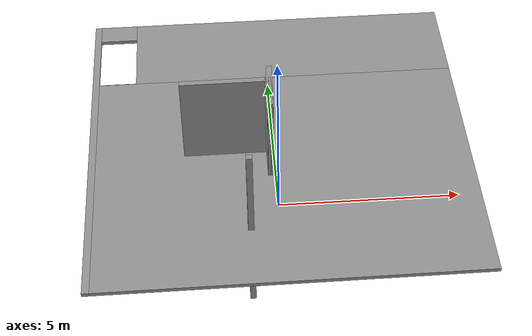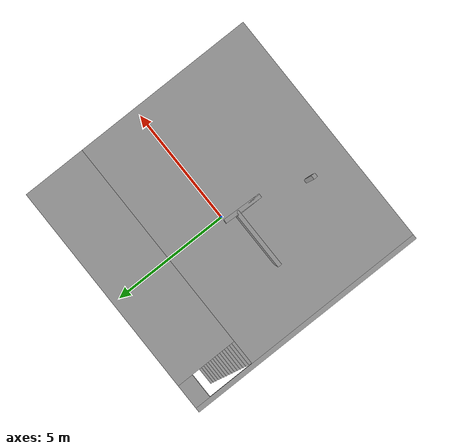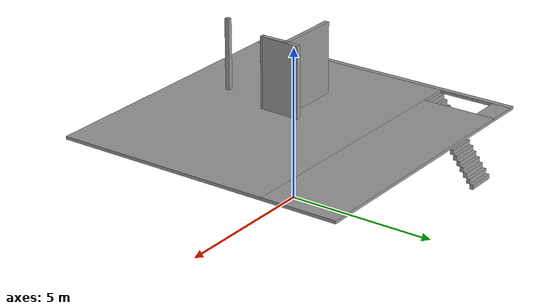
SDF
<sdf version="1.6">
 <model name="TwoStoreyBuilding">
  <link name="Floor_0">
   <pose>0 0 2.5 0 -0 0</pose>
   <visual name="Floor_0_Visual_0">
    <pose>-4.80983 0 0.05 0 -0 0</pose>
    <geometry><box><size>0.180349 9.8 0.1</size></box></geometry>
    <material>
     <script><uri>file://media/materials/scripts/gazebo.material</uri><name>Gazebo/Grey</name></script>
     <ambient>1 1 1 1</ambient>
    </material>
    <meta><layer>1</layer></meta>
   </visual>
   <visual name="Floor_0_Visual_1">
    <pose>0.090174 -1.26072 0.05 0 -0 0</pose>
    <geometry><box><size>9.61965 7.27856 0.1</size></box></geometry>
    <material>
     <script><uri>file://media/materials/scripts/gazebo.material</uri><name>Gazebo/Grey</name></script>
     <ambient>1 1 1 1</ambient>
    </material>
    <meta><layer>1</layer></meta>
   </visual>
   <visual name="Floor_0_Visual_2">
    <pose>0.590174 3.63928 0.05 0 -0 0</pose>
    <geometry><box><size>8.61965 2.52144 0.1</size></box></geometry>
    <material>
     <script><uri>file://media/materials/scripts/gazebo.material</uri><name>Gazebo/Grey</name></script>
     <ambient>1 1 1 1</ambient>
    </material>
    <meta><layer>1</layer></meta>
   </visual>
   <visual name="Floor_0_Visual_3">
    <pose>-4.21965 4.58311 0.05 0 -0 0</pose>
    <geometry><box><size>1 0.633786 0.1</size></box></geometry>
    <material>
     <script><uri>file://media/materials/scripts/gazebo.material</uri><name>Gazebo/Grey</name></script>
     <ambient>1 1 1 1</ambient>
    </material>
    <meta><layer>1</layer></meta>
   </visual>
   <collision name="Floor_0_Collision_0">
    <pose>-4.80983 0 0.05 0 -0 0</pose>
    <geometry><box><size>0.180349 9.8 0.1</size></box></geometry>
    <surface>
     <friction>
      <ode><mu>1</mu><mu2>1</mu2><fdir1>0 0 0</fdir1><slip1>0</slip1><slip2>0</slip2></ode>
      <torsional>
       <coefficient>1</coefficient>
       <patch_radius>0</patch_radius>
       <surface_radius>0</surface_radius>
       <use_patch_radius>1</use_patch_radius>
       <ode><slip>0</slip></ode>
      </torsional>
     </friction>
     <bounce><restitution_coefficient>0</restitution_coefficient><threshold>1e+06</threshold></bounce>
     <contact>
      <collide_without_contact>0</collide_without_contact>
      <collide_without_contact_bitmask>1</collide_without_contact_bitmask>
      <collide_bitmask>1</collide_bitmask>
      <ode>
       <soft_cfm>0</soft_cfm>
       <soft_erp>0.2</soft_erp>
       <kp>1e+13</kp>
       <kd>1</kd>
       <max_vel>0.01</max_vel>
       <min_depth>0</min_depth>
      </ode>
      <bullet>
       <split_impulse>1</split_impulse>
       <split_impulse_penetration_threshold>-0.01</split_impulse_penetration_threshold>
       <soft_cfm>0</soft_cfm>
       <soft_erp>0.2</soft_erp>
       <kp>1e+13</kp>
       <kd>1</kd>
      </bullet>
     </contact>
    </surface>
   </collision>
   <collision name="Floor_0_Collision_1">
    <pose>0.090174 -1.26072 0.05 0 -0 0</pose>
    <geometry><box><size>9.61965 7.27856 0.1</size></box></geometry>
    <surface>
     <friction>
      <ode><mu>1</mu><mu2>1</mu2><fdir1>0 0 0</fdir1><slip1>0</slip1><slip2>0</slip2></ode>
      <torsional>
       <coefficient>1</coefficient>
       <patch_radius>0</patch_radius>
       <surface_radius>0</surface_radius>
       <use_patch_radius>1</use_patch_radius>
       <ode><slip>0</slip></ode>
      </torsional>
     </friction>
     <bounce><restitution_coefficient>0</restitution_coefficient><threshold>1e+06</threshold></bounce>
     <contact>
      <collide_without_contact>0</collide_without_contact>
      <collide_without_contact_bitmask>1</collide_without_contact_bitmask>
      <collide_bitmask>1</collide_bitmask>
      <ode>
       <soft_cfm>0</soft_cfm>
       <soft_erp>0.2</soft_erp>
       <kp>1e+13</kp>
       <kd>1</kd>
       <max_vel>0.01</max_vel>
       <min_depth>0</min_depth>
      </ode>
      <bullet>
       <split_impulse>1</split_impulse>
       <split_impulse_penetration_threshold>-0.01</split_impulse_penetration_threshold>
       <soft_cfm>0</soft_cfm>
       <soft_erp>0.2</soft_erp>
       <kp>1e+13</kp>
       <kd>1</kd>
      </bullet>
     </contact>
    </surface>
   </collision>
   <collision name="Floor_0_Collision_2">
    <pose>0.590174 3.63928 0.05 0 -0 0</pose>
    <geometry><box><size>8.61965 2.52144 0.1</size></box></geometry>
    <surface>
     <friction>
      <ode><mu>1</mu><mu2>1</mu2><fdir1>0 0 0</fdir1><slip1>0</slip1><slip2>0</slip2></ode>
      <torsional>
       <coefficient>1</coefficient>
       <patch_radius>0</patch_radius>
       <surface_radius>0</surface_radius>
       <use_patch_radius>1</use_patch_radius>
       <ode><slip>0</slip></ode>
      </torsional>
     </friction>
     <bounce><restitution_coefficient>0</restitution_coefficient><threshold>1e+06</threshold></bounce>
     <contact>
      <collide_without_contact>0</collide_without_contact>
      <collide_without_contact_bitmask>1</collide_without_contact_bitmask>
      <collide_bitmask>1</collide_bitmask>
      <ode>
       <soft_cfm>0</soft_cfm>
       <soft_erp>0.2</soft_erp>
       <kp>1e+13</kp>
       <kd>1</kd>
       <max_vel>0.01</max_vel>
       <min_depth>0</min_depth>
      </ode>
      <bullet>
       <split_impulse>1</split_impulse>
       <split_impulse_penetration_threshold>-0.01</split_impulse_penetration_threshold>
       <soft_cfm>0</soft_cfm>
       <soft_erp>0.2</soft_erp>
       <kp>1e+13</kp>
       <kd>1</kd>
      </bullet>
     </contact>
    </surface>
   </collision>
   <collision name="Floor_0_Collision_3">
    <pose>-4.21965 4.58311 0.05 0 -0 0</pose>
    <geometry><box><size>1 0.633786 0.1</size></box></geometry>
    <surface>
     <friction>
      <ode><mu>1</mu><mu2>1</mu2><fdir1>0 0 0</fdir1><slip1>0</slip1><slip2>0</slip2></ode>
      <torsional>
       <coefficient>1</coefficient>
       <patch_radius>0</patch_radius>
       <surface_radius>0</surface_radius>
       <use_patch_radius>1</use_patch_radius>
       <ode><slip>0</slip></ode>
      </torsional>
     </friction>
     <bounce><restitution_coefficient>0</restitution_coefficient><threshold>1e+06</threshold></bounce>
     <contact>
      <collide_without_contact>0</collide_without_contact>
      <collide_without_contact_bitmask>1</collide_without_contact_bitmask>
      <collide_bitmask>1</collide_bitmask>
      <ode>
       <soft_cfm>0</soft_cfm>
       <soft_erp>0.2</soft_erp>
       <kp>1e+13</kp>
       <kd>1</kd>
       <max_vel>0.01</max_vel>
       <min_depth>0</min_depth>
      </ode>
      <bullet>
       <split_impulse>1</split_impulse>
       <split_impulse_penetration_threshold>-0.01</split_impulse_penetration_threshold>
       <soft_cfm>0</soft_cfm>
       <soft_erp>0.2</soft_erp>
       <kp>1e+13</kp>
       <kd>1</kd>
      </bullet>
     </contact>
    </surface>
   </collision>
  </link>
  <link name="Stairs_1">
   <visual name="Stairs_1_Visual_0">
    <pose>-4.21965 4.20329 0.083333 0 -0 0</pose>
    <geometry><box><size>1 0.125844 0.166667</size></box></geometry>
    <material>
     <script><uri>file://media/materials/scripts/gazebo.material</uri><name>Gazebo/Grey</name></script>
     <ambient>1 1 1 1</ambient>
    </material>
    <meta><layer>0</layer></meta>
   </visual>
   <visual name="Stairs_1_Visual_1">
    <pose>-4.21965 4.07745 0.25 0 -0 0</pose>
    <geometry><box><size>1 0.125844 0.166667</size></box></geometry>
    <material>
     <script><uri>file://media/materials/scripts/gazebo.material</uri><name>Gazebo/Grey</name></script>
     <ambient>1 1 1 1</ambient>
    </material>
    <meta><layer>0</layer></meta>
   </visual>
   <visual name="Stairs_1_Visual_2">
    <pose>-4.21965 3.9516 0.416667 0 -0 0</pose>
    <geometry><box><size>1 0.125844 0.166667</size></box></geometry>
    <material>
     <script><uri>file://media/materials/scripts/gazebo.material</uri><name>Gazebo/Grey</name></script>
     <ambient>1 1 1 1</ambient>
    </material>
    <meta><layer>0</layer></meta>
   </visual>
   <visual name="Stairs_1_Visual_3">
    <pose>-4.21965 3.82576 0.583333 0 -0 0</pose>
    <geometry><box><size>1 0.125844 0.166667</size></box></geometry>
    <material>
     <script><uri>file://media/materials/scripts/gazebo.material</uri><name>Gazebo/Grey</name></script>
     <ambient>1 1 1 1</ambient>
    </material>
    <meta><layer>0</layer></meta>
   </visual>
   <visual name="Stairs_1_Visual_4">
    <pose>-4.21965 3.69992 0.75 0 -0 0</pose>
    <geometry><box><size>1 0.125844 0.166667</size></box></geometry>
    <material>
     <script><uri>file://media/materials/scripts/gazebo.material</uri><name>Gazebo/Grey</name></script>
     <ambient>1 1 1 1</ambient>
    </material>
    <meta><layer>0</layer></meta>
   </visual>
   <visual name="Stairs_1_Visual_5">
    <pose>-4.21965 3.57407 0.916667 0 -0 0</pose>
    <geometry><box><size>1 0.125844 0.166667</size></box></geometry>
    <material>
     <script><uri>file://media/materials/scripts/gazebo.material</uri><name>Gazebo/Grey</name></script>
     <ambient>1 1 1 1</ambient>
    </material>
    <meta><layer>0</layer></meta>
   </visual>
   <visual name="Stairs_1_Visual_6">
    <pose>-4.21965 3.44823 1.08333 0 -0 0</pose>
    <geometry><box><size>1 0.125844 0.166667</size></box></geometry>
    <material>
     <script><uri>file://media/materials/scripts/gazebo.material</uri><name>Gazebo/Grey</name></script>
     <ambient>1 1 1 1</ambient>
    </material>
    <meta><layer>0</layer></meta>
   </visual>
   <visual name="Stairs_1_Visual_7">
    <pose>-4.21965 3.32239 1.25 0 -0 0</pose>
    <geometry><box><size>1 0.125844 0.166667</size></box></geometry>
    <material>
     <script><uri>file://media/materials/scripts/gazebo.material</uri><name>Gazebo/Grey</name></script>
     <ambient>1 1 1 1</ambient>
    </material>
    <meta><layer>0</layer></meta>
   </visual>
   <visual name="Stairs_1_Visual_8">
    <pose>-4.21965 3.19654 1.41667 0 -0 0</pose>
    <geometry><box><size>1 0.125844 0.166667</size></box></geometry>
    <material>
     <script><uri>file://media/materials/scripts/gazebo.material</uri><name>Gazebo/Grey</name></script>
     <ambient>1 1 1 1</ambient>
    </material>
    <meta><layer>0</layer></meta>
   </visual>
   <visual name="Stairs_1_Visual_9">
    <pose>-4.21965 3.0707 1.58333 0 -0 0</pose>
    <geometry><box><size>1 0.125844 0.166667</size></box></geometry>
    <material>
     <script><uri>file://media/materials/scripts/gazebo.material</uri><name>Gazebo/Grey</name></script>
     <ambient>1 1 1 1</ambient>
    </material>
    <meta><layer>0</layer></meta>
   </visual>
   <visual name="Stairs_1_Visual_10">
    <pose>-4.21965 2.94485 1.75 0 -0 0</pose>
    <geometry><box><size>1 0.125844 0.166667</size></box></geometry>
    <material>
     <script><uri>file://media/materials/scripts/gazebo.material</uri><name>Gazebo/Grey</name></script>
     <ambient>1 1 1 1</ambient>
    </material>
    <meta><layer>0</layer></meta>
   </visual>
   <visual name="Stairs_1_Visual_11">
    <pose>-4.21965 2.81901 1.91667 0 -0 0</pose>
    <geometry><box><size>1 0.125844 0.166667</size></box></geometry>
    <material>
     <script><uri>file://media/materials/scripts/gazebo.material</uri><name>Gazebo/Grey</name></script>
     <ambient>1 1 1 1</ambient>
    </material>
    <meta><layer>0</layer></meta>
   </visual>
   <visual name="Stairs_1_Visual_12">
    <pose>-4.21965 2.69317 2.08333 0 -0 0</pose>
    <geometry><box><size>1 0.125844 0.166667</size></box></geometry>
    <material>
     <script><uri>file://media/materials/scripts/gazebo.material</uri><name>Gazebo/Grey</name></script>
     <ambient>1 1 1 1</ambient>
    </material>
    <meta><layer>0</layer></meta>
   </visual>
   <visual name="Stairs_1_Visual_13">
    <pose>-4.21965 2.56732 2.25 0 -0 0</pose>
    <geometry><box><size>1 0.125844 0.166667</size></box></geometry>
    <material>
     <script><uri>file://media/materials/scripts/gazebo.material</uri><name>Gazebo/Grey</name></script>
     <ambient>1 1 1 1</ambient>
    </material>
    <meta><layer>0</layer></meta>
   </visual>
   <visual name="Stairs_1_Visual_14">
    <pose>-4.21965 2.44148 2.41667 0 -0 0</pose>
    <geometry><box><size>1 0.125844 0.166667</size></box></geometry>
    <material>
     <script><uri>file://media/materials/scripts/gazebo.material</uri><name>Gazebo/Grey</name></script>
     <ambient>1 1 1 1</ambient>
    </material>
    <meta><layer>0</layer></meta>
   </visual>
   <collision name="Stairs_1_Collision_0">
    <pose>-4.21965 4.20329 0.083333 0 -0 0</pose>
    <geometry><box><size>1 0.125844 0.166667</size></box></geometry>
    <surface>
     <friction>
      <ode><mu>1</mu><mu2>1</mu2><fdir1>0 0 0</fdir1><slip1>0</slip1><slip2>0</slip2></ode>
      <torsional>
       <coefficient>1</coefficient>
       <patch_radius>0</patch_radius>
       <surface_radius>0</surface_radius>
       <use_patch_radius>1</use_patch_radius>
       <ode><slip>0</slip></ode>
      </torsional>
     </friction>
     <bounce><restitution_coefficient>0</restitution_coefficient><threshold>1e+06</threshold></bounce>
     <contact>
      <collide_without_contact>0</collide_without_contact>
      <collide_without_contact_bitmask>1</collide_without_contact_bitmask>
      <collide_bitmask>1</collide_bitmask>
      <ode>
       <soft_cfm>0</soft_cfm>
       <soft_erp>0.2</soft_erp>
       <kp>1e+13</kp>
       <kd>1</kd>
       <max_vel>0.01</max_vel>
       <min_depth>0</min_depth>
      </ode>
      <bullet>
       <split_impulse>1</split_impulse>
       <split_impulse_penetration_threshold>-0.01</split_impulse_penetration_threshold>
       <soft_cfm>0</soft_cfm>
       <soft_erp>0.2</soft_erp>
       <kp>1e+13</kp>
       <kd>1</kd>
      </bullet>
     </contact>
    </surface>
   </collision>
   <collision name="Stairs_1_Collision_1">
    <pose>-4.21965 4.07745 0.25 0 -0 0</pose>
    <geometry><box><size>1 0.125844 0.166667</size></box></geometry>
    <surface>
     <friction>
      <ode><mu>1</mu><mu2>1</mu2><fdir1>0 0 0</fdir1><slip1>0</slip1><slip2>0</slip2></ode>
      <torsional>
       <coefficient>1</coefficient>
       <patch_radius>0</patch_radius>
       <surface_radius>0</surface_radius>
       <use_patch_radius>1</use_patch_radius>
       <ode><slip>0</slip></ode>
      </torsional>
     </friction>
     <bounce><restitution_coefficient>0</restitution_coefficient><threshold>1e+06</threshold></bounce>
     <contact>
      <collide_without_contact>0</collide_without_contact>
      <collide_without_contact_bitmask>1</collide_without_contact_bitmask>
      <collide_bitmask>1</collide_bitmask>
      <ode>
       <soft_cfm>0</soft_cfm>
       <soft_erp>0.2</soft_erp>
       <kp>1e+13</kp>
       <kd>1</kd>
       <max_vel>0.01</max_vel>
       <min_depth>0</min_depth>
      </ode>
      <bullet>
       <split_impulse>1</split_impulse>
       <split_impulse_penetration_threshold>-0.01</split_impulse_penetration_threshold>
       <soft_cfm>0</soft_cfm>
       <soft_erp>0.2</soft_erp>
       <kp>1e+13</kp>
       <kd>1</kd>
      </bullet>
     </contact>
    </surface>
   </collision>
   <collision name="Stairs_1_Collision_2">
    <pose>-4.21965 3.9516 0.416667 0 -0 0</pose>
    <geometry><box><size>1 0.125844 0.166667</size></box></geometry>
    <surface>
     <friction>
      <ode><mu>1</mu><mu2>1</mu2><fdir1>0 0 0</fdir1><slip1>0</slip1><slip2>0</slip2></ode>
      <torsional>
       <coefficient>1</coefficient>
       <patch_radius>0</patch_radius>
       <surface_radius>0</surface_radius>
       <use_patch_radius>1</use_patch_radius>
       <ode><slip>0</slip></ode>
      </torsional>
     </friction>
     <bounce><restitution_coefficient>0</restitution_coefficient><threshold>1e+06</threshold></bounce>
     <contact>
      <collide_without_contact>0</collide_without_contact>
      <collide_without_contact_bitmask>1</collide_without_contact_bitmask>
      <collide_bitmask>1</collide_bitmask>
      <ode>
       <soft_cfm>0</soft_cfm>
       <soft_erp>0.2</soft_erp>
       <kp>1e+13</kp>
       <kd>1</kd>
       <max_vel>0.01</max_vel>
       <min_depth>0</min_depth>
      </ode>
      <bullet>
       <split_impulse>1</split_impulse>
       <split_impulse_penetration_threshold>-0.01</split_impulse_penetration_threshold>
       <soft_cfm>0</soft_cfm>
       <soft_erp>0.2</soft_erp>
       <kp>1e+13</kp>
       <kd>1</kd>
      </bullet>
     </contact>
    </surface>
   </collision>
   <collision name="Stairs_1_Collision_3">
    <pose>-4.21965 3.82576 0.583333 0 -0 0</pose>
    <geometry><box><size>1 0.125844 0.166667</size></box></geometry>
    <surface>
     <friction>
      <ode><mu>1</mu><mu2>1</mu2><fdir1>0 0 0</fdir1><slip1>0</slip1><slip2>0</slip2></ode>
      <torsional>
       <coefficient>1</coefficient>
       <patch_radius>0</patch_radius>
       <surface_radius>0</surface_radius>
       <use_patch_radius>1</use_patch_radius>
       <ode><slip>0</slip></ode>
      </torsional>
     </friction>
     <bounce><restitution_coefficient>0</restitution_coefficient><threshold>1e+06</threshold></bounce>
     <contact>
      <collide_without_contact>0</collide_without_contact>
      <collide_without_contact_bitmask>1</collide_without_contact_bitmask>
      <collide_bitmask>1</collide_bitmask>
      <ode>
       <soft_cfm>0</soft_cfm>
       <soft_erp>0.2</soft_erp>
       <kp>1e+13</kp>
       <kd>1</kd>
       <max_vel>0.01</max_vel>
       <min_depth>0</min_depth>
      </ode>
      <bullet>
       <split_impulse>1</split_impulse>
       <split_impulse_penetration_threshold>-0.01</split_impulse_penetration_threshold>
       <soft_cfm>0</soft_cfm>
       <soft_erp>0.2</soft_erp>
       <kp>1e+13</kp>
       <kd>1</kd>
      </bullet>
     </contact>
    </surface>
   </collision>
   <collision name="Stairs_1_Collision_4">
    <pose>-4.21965 3.69992 0.75 0 -0 0</pose>
    <geometry><box><size>1 0.125844 0.166667</size></box></geometry>
    <surface>
     <friction>
      <ode><mu>1</mu><mu2>1</mu2><fdir1>0 0 0</fdir1><slip1>0</slip1><slip2>0</slip2></ode>
      <torsional>
       <coefficient>1</coefficient>
       <patch_radius>0</patch_radius>
       <surface_radius>0</surface_radius>
       <use_patch_radius>1</use_patch_radius>
       <ode><slip>0</slip></ode>
      </torsional>
     </friction>
     <bounce><restitution_coefficient>0</restitution_coefficient><threshold>1e+06</threshold></bounce>
     <contact>
      <collide_without_contact>0</collide_without_contact>
      <collide_without_contact_bitmask>1</collide_without_contact_bitmask>
      <collide_bitmask>1</collide_bitmask>
      <ode>
       <soft_cfm>0</soft_cfm>
       <soft_erp>0.2</soft_erp>
       <kp>1e+13</kp>
       <kd>1</kd>
       <max_vel>0.01</max_vel>
       <min_depth>0</min_depth>
      </ode>
      <bullet>
       <split_impulse>1</split_impulse>
       <split_impulse_penetration_threshold>-0.01</split_impulse_penetration_threshold>
       <soft_cfm>0</soft_cfm>
       <soft_erp>0.2</soft_erp>
       <kp>1e+13</kp>
       <kd>1</kd>
      </bullet>
     </contact>
    </surface>
   </collision>
   <collision name="Stairs_1_Collision_5">
    <pose>-4.21965 3.57407 0.916667 0 -0 0</pose>
    <geometry><box><size>1 0.125844 0.166667</size></box></geometry>
    <surface>
     <friction>
      <ode><mu>1</mu><mu2>1</mu2><fdir1>0 0 0</fdir1><slip1>0</slip1><slip2>0</slip2></ode>
      <torsional>
       <coefficient>1</coefficient>
       <patch_radius>0</patch_radius>
       <surface_radius>0</surface_radius>
       <use_patch_radius>1</use_patch_radius>
       <ode><slip>0</slip></ode>
      </torsional>
     </friction>
     <bounce><restitution_coefficient>0</restitution_coefficient><threshold>1e+06</threshold></bounce>
     <contact>
      <collide_without_contact>0</collide_without_contact>
      <collide_without_contact_bitmask>1</collide_without_contact_bitmask>
      <collide_bitmask>1</collide_bitmask>
      <ode>
       <soft_cfm>0</soft_cfm>
       <soft_erp>0.2</soft_erp>
       <kp>1e+13</kp>
       <kd>1</kd>
       <max_vel>0.01</max_vel>
       <min_depth>0</min_depth>
      </ode>
      <bullet>
       <split_impulse>1</split_impulse>
       <split_impulse_penetration_threshold>-0.01</split_impulse_penetration_threshold>
       <soft_cfm>0</soft_cfm>
       <soft_erp>0.2</soft_erp>
       <kp>1e+13</kp>
       <kd>1</kd>
      </bullet>
     </contact>
    </surface>
   </collision>
   <collision name="Stairs_1_Collision_6">
    <pose>-4.21965 3.44823 1.08333 0 -0 0</pose>
    <geometry><box><size>1 0.125844 0.166667</size></box></geometry>
    <surface>
     <friction>
      <ode><mu>1</mu><mu2>1</mu2><fdir1>0 0 0</fdir1><slip1>0</slip1><slip2>0</slip2></ode>
      <torsional>
       <coefficient>1</coefficient>
       <patch_radius>0</patch_radius>
       <surface_radius>0</surface_radius>
       <use_patch_radius>1</use_patch_radius>
       <ode><slip>0</slip></ode>
      </torsional>
     </friction>
     <bounce><restitution_coefficient>0</restitution_coefficient><threshold>1e+06</threshold></bounce>
     <contact>
      <collide_without_contact>0</collide_without_contact>
      <collide_without_contact_bitmask>1</collide_without_contact_bitmask>
      <collide_bitmask>1</collide_bitmask>
      <ode>
       <soft_cfm>0</soft_cfm>
       <soft_erp>0.2</soft_erp>
       <kp>1e+13</kp>
       <kd>1</kd>
       <max_vel>0.01</max_vel>
       <min_depth>0</min_depth>
      </ode>
      <bullet>
       <split_impulse>1</split_impulse>
       <split_impulse_penetration_threshold>-0.01</split_impulse_penetration_threshold>
       <soft_cfm>0</soft_cfm>
       <soft_erp>0.2</soft_erp>
       <kp>1e+13</kp>
       <kd>1</kd>
      </bullet>
     </contact>
    </surface>
   </collision>
   <collision name="Stairs_1_Collision_7">
    <pose>-4.21965 3.32239 1.25 0 -0 0</pose>
    <geometry><box><size>1 0.125844 0.166667</size></box></geometry>
    <surface>
     <friction>
      <ode><mu>1</mu><mu2>1</mu2><fdir1>0 0 0</fdir1><slip1>0</slip1><slip2>0</slip2></ode>
      <torsional>
       <coefficient>1</coefficient>
       <patch_radius>0</patch_radius>
       <surface_radius>0</surface_radius>
       <use_patch_radius>1</use_patch_radius>
       <ode><slip>0</slip></ode>
      </torsional>
     </friction>
     <bounce><restitution_coefficient>0</restitution_coefficient><threshold>1e+06</threshold></bounce>
     <contact>
      <collide_without_contact>0</collide_without_contact>
      <collide_without_contact_bitmask>1</collide_without_contact_bitmask>
      <collide_bitmask>1</collide_bitmask>
      <ode>
       <soft_cfm>0</soft_cfm>
       <soft_erp>0.2</soft_erp>
       <kp>1e+13</kp>
       <kd>1</kd>
       <max_vel>0.01</max_vel>
       <min_depth>0</min_depth>
      </ode>
      <bullet>
       <split_impulse>1</split_impulse>
       <split_impulse_penetration_threshold>-0.01</split_impulse_penetration_threshold>
       <soft_cfm>0</soft_cfm>
       <soft_erp>0.2</soft_erp>
       <kp>1e+13</kp>
       <kd>1</kd>
      </bullet>
     </contact>
    </surface>
   </collision>
   <collision name="Stairs_1_Collision_8">
    <pose>-4.21965 3.19654 1.41667 0 -0 0</pose>
    <geometry><box><size>1 0.125844 0.166667</size></box></geometry>
    <surface>
     <friction>
      <ode><mu>1</mu><mu2>1</mu2><fdir1>0 0 0</fdir1><slip1>0</slip1><slip2>0</slip2></ode>
      <torsional>
       <coefficient>1</coefficient>
       <patch_radius>0</patch_radius>
       <surface_radius>0</surface_radius>
       <use_patch_radius>1</use_patch_radius>
       <ode><slip>0</slip></ode>
      </torsional>
     </friction>
     <bounce><restitution_coefficient>0</restitution_coefficient><threshold>1e+06</threshold></bounce>
     <contact>
      <collide_without_contact>0</collide_without_contact>
      <collide_without_contact_bitmask>1</collide_without_contact_bitmask>
      <collide_bitmask>1</collide_bitmask>
      <ode>
       <soft_cfm>0</soft_cfm>
       <soft_erp>0.2</soft_erp>
       <kp>1e+13</kp>
       <kd>1</kd>
       <max_vel>0.01</max_vel>
       <min_depth>0</min_depth>
      </ode>
      <bullet>
       <split_impulse>1</split_impulse>
       <split_impulse_penetration_threshold>-0.01</split_impulse_penetration_threshold>
       <soft_cfm>0</soft_cfm>
       <soft_erp>0.2</soft_erp>
       <kp>1e+13</kp>
       <kd>1</kd>
      </bullet>
     </contact>
    </surface>
   </collision>
   <collision name="Stairs_1_Collision_9">
    <pose>-4.21965 3.0707 1.58333 0 -0 0</pose>
    <geometry><box><size>1 0.125844 0.166667</size></box></geometry>
    <surface>
     <friction>
      <ode><mu>1</mu><mu2>1</mu2><fdir1>0 0 0</fdir1><slip1>0</slip1><slip2>0</slip2></ode>
      <torsional>
       <coefficient>1</coefficient>
       <patch_radius>0</patch_radius>
       <surface_radius>0</surface_radius>
       <use_patch_radius>1</use_patch_radius>
       <ode><slip>0</slip></ode>
      </torsional>
     </friction>
     <bounce><restitution_coefficient>0</restitution_coefficient><threshold>1e+06</threshold></bounce>
     <contact>
      <collide_without_contact>0</collide_without_contact>
      <collide_without_contact_bitmask>1</collide_without_contact_bitmask>
      <collide_bitmask>1</collide_bitmask>
      <ode>
       <soft_cfm>0</soft_cfm>
       <soft_erp>0.2</soft_erp>
       <kp>1e+13</kp>
       <kd>1</kd>
       <max_vel>0.01</max_vel>
       <min_depth>0</min_depth>
      </ode>
      <bullet>
       <split_impulse>1</split_impulse>
       <split_impulse_penetration_threshold>-0.01</split_impulse_penetration_threshold>
       <soft_cfm>0</soft_cfm>
       <soft_erp>0.2</soft_erp>
       <kp>1e+13</kp>
       <kd>1</kd>
      </bullet>
     </contact>
    </surface>
   </collision>
   <collision name="Stairs_1_Collision_10">
    <pose>-4.21965 2.94485 1.75 0 -0 0</pose>
    <geometry><box><size>1 0.125844 0.166667</size></box></geometry>
    <surface>
     <friction>
      <ode><mu>1</mu><mu2>1</mu2><fdir1>0 0 0</fdir1><slip1>0</slip1><slip2>0</slip2></ode>
      <torsional>
       <coefficient>1</coefficient>
       <patch_radius>0</patch_radius>
       <surface_radius>0</surface_radius>
       <use_patch_radius>1</use_patch_radius>
       <ode><slip>0</slip></ode>
      </torsional>
     </friction>
     <bounce><restitution_coefficient>0</restitution_coefficient><threshold>1e+06</threshold></bounce>
     <contact>
      <collide_without_contact>0</collide_without_contact>
      <collide_without_contact_bitmask>1</collide_without_contact_bitmask>
      <collide_bitmask>1</collide_bitmask>
      <ode>
       <soft_cfm>0</soft_cfm>
       <soft_erp>0.2</soft_erp>
       <kp>1e+13</kp>
       <kd>1</kd>
       <max_vel>0.01</max_vel>
       <min_depth>0</min_depth>
      </ode>
      <bullet>
       <split_impulse>1</split_impulse>
       <split_impulse_penetration_threshold>-0.01</split_impulse_penetration_threshold>
       <soft_cfm>0</soft_cfm>
       <soft_erp>0.2</soft_erp>
       <kp>1e+13</kp>
       <kd>1</kd>
      </bullet>
     </contact>
    </surface>
   </collision>
   <collision name="Stairs_1_Collision_11">
    <pose>-4.21965 2.81901 1.91667 0 -0 0</pose>
    <geometry><box><size>1 0.125844 0.166667</size></box></geometry>
    <surface>
     <friction>
      <ode><mu>1</mu><mu2>1</mu2><fdir1>0 0 0</fdir1><slip1>0</slip1><slip2>0</slip2></ode>
      <torsional>
       <coefficient>1</coefficient>
       <patch_radius>0</patch_radius>
       <surface_radius>0</surface_radius>
       <use_patch_radius>1</use_patch_radius>
       <ode><slip>0</slip></ode>
      </torsional>
     </friction>
     <bounce><restitution_coefficient>0</restitution_coefficient><threshold>1e+06</threshold></bounce>
     <contact>
      <collide_without_contact>0</collide_without_contact>
      <collide_without_contact_bitmask>1</collide_without_contact_bitmask>
      <collide_bitmask>1</collide_bitmask>
      <ode>
       <soft_cfm>0</soft_cfm>
       <soft_erp>0.2</soft_erp>
       <kp>1e+13</kp>
       <kd>1</kd>
       <max_vel>0.01</max_vel>
       <min_depth>0</min_depth>
      </ode>
      <bullet>
       <split_impulse>1</split_impulse>
       <split_impulse_penetration_threshold>-0.01</split_impulse_penetration_threshold>
       <soft_cfm>0</soft_cfm>
       <soft_erp>0.2</soft_erp>
       <kp>1e+13</kp>
       <kd>1</kd>
      </bullet>
     </contact>
    </surface>
   </collision>
   <collision name="Stairs_1_Collision_12">
    <pose>-4.21965 2.69317 2.08333 0 -0 0</pose>
    <geometry><box><size>1 0.125844 0.166667</size></box></geometry>
    <surface>
     <friction>
      <ode><mu>1</mu><mu2>1</mu2><fdir1>0 0 0</fdir1><slip1>0</slip1><slip2>0</slip2></ode>
      <torsional>
       <coefficient>1</coefficient>
       <patch_radius>0</patch_radius>
       <surface_radius>0</surface_radius>
       <use_patch_radius>1</use_patch_radius>
       <ode><slip>0</slip></ode>
      </torsional>
     </friction>
     <bounce><restitution_coefficient>0</restitution_coefficient><threshold>1e+06</threshold></bounce>
     <contact>
      <collide_without_contact>0</collide_without_contact>
      <collide_without_contact_bitmask>1</collide_without_contact_bitmask>
      <collide_bitmask>1</collide_bitmask>
      <ode>
       <soft_cfm>0</soft_cfm>
       <soft_erp>0.2</soft_erp>
       <kp>1e+13</kp>
       <kd>1</kd>
       <max_vel>0.01</max_vel>
       <min_depth>0</min_depth>
      </ode>
      <bullet>
       <split_impulse>1</split_impulse>
       <split_impulse_penetration_threshold>-0.01</split_impulse_penetration_threshold>
       <soft_cfm>0</soft_cfm>
       <soft_erp>0.2</soft_erp>
       <kp>1e+13</kp>
       <kd>1</kd>
      </bullet>
     </contact>
    </surface>
   </collision>
   <collision name="Stairs_1_Collision_13">
    <pose>-4.21965 2.56732 2.25 0 -0 0</pose>
    <geometry><box><size>1 0.125844 0.166667</size></box></geometry>
    <surface>
     <friction>
      <ode><mu>1</mu><mu2>1</mu2><fdir1>0 0 0</fdir1><slip1>0</slip1><slip2>0</slip2></ode>
      <torsional>
       <coefficient>1</coefficient>
       <patch_radius>0</patch_radius>
       <surface_radius>0</surface_radius>
       <use_patch_radius>1</use_patch_radius>
       <ode><slip>0</slip></ode>
      </torsional>
     </friction>
     <bounce><restitution_coefficient>0</restitution_coefficient><threshold>1e+06</threshold></bounce>
     <contact>
      <collide_without_contact>0</collide_without_contact>
      <collide_without_contact_bitmask>1</collide_without_contact_bitmask>
      <collide_bitmask>1</collide_bitmask>
      <ode>
       <soft_cfm>0</soft_cfm>
       <soft_erp>0.2</soft_erp>
       <kp>1e+13</kp>
       <kd>1</kd>
       <max_vel>0.01</max_vel>
       <min_depth>0</min_depth>
      </ode>
      <bullet>
       <split_impulse>1</split_impulse>
       <split_impulse_penetration_threshold>-0.01</split_impulse_penetration_threshold>
       <soft_cfm>0</soft_cfm>
       <soft_erp>0.2</soft_erp>
       <kp>1e+13</kp>
       <kd>1</kd>
      </bullet>
     </contact>
    </surface>
   </collision>
   <collision name="Stairs_1_Collision_14">
    <pose>-4.21965 2.44148 2.41667 0 -0 0</pose>
    <geometry><box><size>1 0.125844 0.166667</size></box></geometry>
    <surface>
     <friction>
      <ode><mu>1</mu><mu2>1</mu2><fdir1>0 0 0</fdir1><slip1>0</slip1><slip2>0</slip2></ode>
      <torsional>
       <coefficient>1</coefficient>
       <patch_radius>0</patch_radius>
       <surface_radius>0</surface_radius>
       <use_patch_radius>1</use_patch_radius>
       <ode><slip>0</slip></ode>
      </torsional>
     </friction>
     <bounce><restitution_coefficient>0</restitution_coefficient><threshold>1e+06</threshold></bounce>
     <contact>
      <collide_without_contact>0</collide_without_contact>
      <collide_without_contact_bitmask>1</collide_without_contact_bitmask>
      <collide_bitmask>1</collide_bitmask>
      <ode>
       <soft_cfm>0</soft_cfm>
       <soft_erp>0.2</soft_erp>
       <kp>1e+13</kp>
       <kd>1</kd>
       <max_vel>0.01</max_vel>
       <min_depth>0</min_depth>
      </ode>
      <bullet>
       <split_impulse>1</split_impulse>
       <split_impulse_penetration_threshold>-0.01</split_impulse_penetration_threshold>
       <soft_cfm>0</soft_cfm>
       <soft_erp>0.2</soft_erp>
       <kp>1e+13</kp>
       <kd>1</kd>
      </bullet>
     </contact>
    </surface>
   </collision>
  </link>
  <link name="Wall_132">
   <pose>-0.251629 -0.690948 2.5 0 0 -1.60764</pose>
   <visual name="Wall_132_Visual">
    <pose>0 0 1.25 0 -0 0</pose>
    <geometry><box><size>1.41897 0.15 2.5</size></box></geometry>
    <material>
     <script><uri>file://media/materials/scripts/gazebo.material</uri><name>Gazebo/Grey</name></script>
     <ambient>1 1 1 1</ambient>
    </material>
    <meta><layer>1</layer></meta>
   </visual>
   <collision name="Wall_132_Collision">
    <pose>0 0 1.25 0 -0 0</pose>
    <geometry><box><size>1.41897 0.15 2.5</size></box></geometry>
    <surface>
     <friction>
      <ode><mu>1</mu><mu2>1</mu2><fdir1>0 0 0</fdir1><slip1>0</slip1><slip2>0</slip2></ode>
      <torsional>
       <coefficient>1</coefficient>
       <patch_radius>0</patch_radius>
       <surface_radius>0</surface_radius>
       <use_patch_radius>1</use_patch_radius>
       <ode><slip>0</slip></ode>
      </torsional>
     </friction>
     <bounce><restitution_coefficient>0</restitution_coefficient><threshold>1e+06</threshold></bounce>
     <contact>
      <collide_without_contact>0</collide_without_contact>
      <collide_without_contact_bitmask>1</collide_without_contact_bitmask>
      <collide_bitmask>1</collide_bitmask>
      <ode>
       <soft_cfm>0</soft_cfm>
       <soft_erp>0.2</soft_erp>
       <kp>1e+13</kp>
       <kd>1</kd>
       <max_vel>0.01</max_vel>
       <min_depth>0</min_depth>
      </ode>
      <bullet>
       <split_impulse>1</split_impulse>
       <split_impulse_penetration_threshold>-0.01</split_impulse_penetration_threshold>
       <soft_cfm>0</soft_cfm>
       <soft_erp>0.2</soft_erp>
       <kp>1e+13</kp>
       <kd>1</kd>
      </bullet>
     </contact>
    </surface>
   </collision>
  </link>
  <link name="Wall_15">
   <pose>-0.275 -0.9 0 0 -0 1.5708</pose>
   <visual name="Wall_15_Visual">
    <pose>0 0 1.25 0 -0 0</pose>
    <geometry><box><size>1 0.15 2.5</size></box></geometry>
    <material>
     <script><uri>file://media/materials/scripts/gazebo.material</uri><name>Gazebo/Grey</name></script>
     <ambient>1 1 1 1</ambient>
    </material>
    <meta><layer>0</layer></meta>
   </visual>
   <collision name="Wall_15_Collision">
    <pose>0 0 1.25 0 -0 0</pose>
    <geometry><box><size>1 0.15 2.5</size></box></geometry>
    <surface>
     <friction>
      <ode><mu>1</mu><mu2>1</mu2><fdir1>0 0 0</fdir1><slip1>0</slip1><slip2>0</slip2></ode>
      <torsional>
       <coefficient>1</coefficient>
       <patch_radius>0</patch_radius>
       <surface_radius>0</surface_radius>
       <use_patch_radius>1</use_patch_radius>
       <ode><slip>0</slip></ode>
      </torsional>
     </friction>
     <bounce><restitution_coefficient>0</restitution_coefficient><threshold>1e+06</threshold></bounce>
     <contact>
      <collide_without_contact>0</collide_without_contact>
      <collide_without_contact_bitmask>1</collide_without_contact_bitmask>
      <collide_bitmask>1</collide_bitmask>
      <ode>
       <soft_cfm>0</soft_cfm>
       <soft_erp>0.2</soft_erp>
       <kp>1e+13</kp>
       <kd>1</kd>
       <max_vel>0.01</max_vel>
       <min_depth>0</min_depth>
      </ode>
      <bullet>
       <split_impulse>1</split_impulse>
       <split_impulse_penetration_threshold>-0.01</split_impulse_penetration_threshold>
       <soft_cfm>0</soft_cfm>
       <soft_erp>0.2</soft_erp>
       <kp>1e+13</kp>
       <kd>1</kd>
      </bullet>
     </contact>
    </surface>
   </collision>
  </link>
  <link name="Wall_18">
   <pose>-1.325 -0.475 0 0 -0 3.14159</pose>
   <visual name="Wall_18_Visual">
    <pose>0 0 1.25 0 -0 0</pose>
    <geometry><box><size>2.25 0.15 2.5</size></box></geometry>
    <material>
     <script><uri>file://media/materials/scripts/gazebo.material</uri><name>Gazebo/Grey</name></script>
     <ambient>1 1 1 1</ambient>
    </material>
    <meta><layer>0</layer></meta>
   </visual>
   <collision name="Wall_18_Collision">
    <pose>0 0 1.25 0 -0 0</pose>
    <geometry><box><size>2.25 0.15 2.5</size></box></geometry>
    <surface>
     <friction>
      <ode><mu>1</mu><mu2>1</mu2><fdir1>0 0 0</fdir1><slip1>0</slip1><slip2>0</slip2></ode>
      <torsional>
       <coefficient>1</coefficient>
       <patch_radius>0</patch_radius>
       <surface_radius>0</surface_radius>
       <use_patch_radius>1</use_patch_radius>
       <ode><slip>0</slip></ode>
      </torsional>
     </friction>
     <bounce><restitution_coefficient>0</restitution_coefficient><threshold>1e+06</threshold></bounce>
     <contact>
      <collide_without_contact>0</collide_without_contact>
      <collide_without_contact_bitmask>1</collide_without_contact_bitmask>
      <collide_bitmask>1</collide_bitmask>
      <ode>
       <soft_cfm>0</soft_cfm>
       <soft_erp>0.2</soft_erp>
       <kp>1e+13</kp>
       <kd>1</kd>
       <max_vel>0.01</max_vel>
       <min_depth>0</min_depth>
      </ode>
      <bullet>
       <split_impulse>1</split_impulse>
       <split_impulse_penetration_threshold>-0.01</split_impulse_penetration_threshold>
       <soft_cfm>0</soft_cfm>
       <soft_erp>0.2</soft_erp>
       <kp>1e+13</kp>
       <kd>1</kd>
      </bullet>
     </contact>
    </surface>
   </collision>
  </link>
  <link name="Wall_4">
   <pose>-0.88059 -3.15694 0 0 -0 0</pose>
   <visual name="Wall_4_Visual">
    <pose>0 0 1.25 0 -0 0</pose>
    <geometry><box><size>0.15 0.15 2.5</size></box></geometry>
    <material>
     <script><uri>file://media/materials/scripts/gazebo.material</uri><name>Gazebo/Grey</name></script>
     <ambient>1 1 1 1</ambient>
    </material>
    <meta><layer>0</layer></meta>
   </visual>
   <collision name="Wall_4_Collision">
    <pose>0 0 1.25 0 -0 0</pose>
    <geometry><box><size>0.15 0.15 2.5</size></box></geometry>
    <surface>
     <friction>
      <ode><mu>1</mu><mu2>1</mu2><fdir1>0 0 0</fdir1><slip1>0</slip1><slip2>0</slip2></ode>
      <torsional>
       <coefficient>1</coefficient>
       <patch_radius>0</patch_radius>
       <surface_radius>0</surface_radius>
       <use_patch_radius>1</use_patch_radius>
       <ode><slip>0</slip></ode>
      </torsional>
     </friction>
     <bounce><restitution_coefficient>0</restitution_coefficient><threshold>1e+06</threshold></bounce>
     <contact>
      <collide_without_contact>0</collide_without_contact>
      <collide_without_contact_bitmask>1</collide_without_contact_bitmask>
      <collide_bitmask>1</collide_bitmask>
      <ode>
       <soft_cfm>0</soft_cfm>
       <soft_erp>0.2</soft_erp>
       <kp>1e+13</kp>
       <kd>1</kd>
       <max_vel>0.01</max_vel>
       <min_depth>0</min_depth>
      </ode>
      <bullet>
       <split_impulse>1</split_impulse>
       <split_impulse_penetration_threshold>-0.01</split_impulse_penetration_threshold>
       <soft_cfm>0</soft_cfm>
       <soft_erp>0.2</soft_erp>
       <kp>1e+13</kp>
       <kd>1</kd>
      </bullet>
     </contact>
    </surface>
   </collision>
  </link>
  <link name="Wall_73">
   <pose>-0.251629 -0.690948 0 0 0 -1.60764</pose>
   <visual name="Wall_73_Visual">
    <pose>0 0 1.25 0 -0 0</pose>
    <geometry><box><size>1.41897 0.15 2.5</size></box></geometry>
    <material>
     <script><uri>file://media/materials/scripts/gazebo.material</uri><name>Gazebo/Grey</name></script>
     <ambient>1 1 1 1</ambient>
    </material>
    <meta><layer>0</layer></meta>
   </visual>
   <collision name="Wall_73_Collision">
    <pose>0 0 1.25 0 -0 0</pose>
    <geometry><box><size>1.41897 0.15 2.5</size></box></geometry>
    <surface>
     <friction>
      <ode><mu>1</mu><mu2>1</mu2><fdir1>0 0 0</fdir1><slip1>0</slip1><slip2>0</slip2></ode>
      <torsional>
       <coefficient>1</coefficient>
       <patch_radius>0</patch_radius>
       <surface_radius>0</surface_radius>
       <use_patch_radius>1</use_patch_radius>
       <ode><slip>0</slip></ode>
      </torsional>
     </friction>
     <bounce><restitution_coefficient>0</restitution_coefficient><threshold>1e+06</threshold></bounce>
     <contact>
      <collide_without_contact>0</collide_without_contact>
      <collide_without_contact_bitmask>1</collide_without_contact_bitmask>
      <collide_bitmask>1</collide_bitmask>
      <ode>
       <soft_cfm>0</soft_cfm>
       <soft_erp>0.2</soft_erp>
       <kp>1e+13</kp>
       <kd>1</kd>
       <max_vel>0.01</max_vel>
       <min_depth>0</min_depth>
      </ode>
      <bullet>
       <split_impulse>1</split_impulse>
       <split_impulse_penetration_threshold>-0.01</split_impulse_penetration_threshold>
       <soft_cfm>0</soft_cfm>
       <soft_erp>0.2</soft_erp>
       <kp>1e+13</kp>
       <kd>1</kd>
      </bullet>
     </contact>
    </surface>
   </collision>
  </link>
  <link name="Wall_85">
   <pose>-0.88059 -3.15694 2.5 0 -0 0</pose>
   <visual name="Wall_85_Visual">
    <pose>0 0 1.25 0 -0 0</pose>
    <geometry><box><size>0.15 0.15 2.5</size></box></geometry>
    <material>
     <script><uri>file://media/materials/scripts/gazebo.material</uri><name>Gazebo/Grey</name></script>
     <ambient>1 1 1 1</ambient>
    </material>
    <meta><layer>1</layer></meta>
   </visual>
   <collision name="Wall_85_Collision">
    <pose>0 0 1.25 0 -0 0</pose>
    <geometry><box><size>0.15 0.15 2.5</size></box></geometry>
    <surface>
     <friction>
      <ode><mu>1</mu><mu2>1</mu2><fdir1>0 0 0</fdir1><slip1>0</slip1><slip2>0</slip2></ode>
      <torsional>
       <coefficient>1</coefficient>
       <patch_radius>0</patch_radius>
       <surface_radius>0</surface_radius>
       <use_patch_radius>1</use_patch_radius>
       <ode><slip>0</slip></ode>
      </torsional>
     </friction>
     <bounce><restitution_coefficient>0</restitution_coefficient><threshold>1e+06</threshold></bounce>
     <contact>
      <collide_without_contact>0</collide_without_contact>
      <collide_without_contact_bitmask>1</collide_without_contact_bitmask>
      <collide_bitmask>1</collide_bitmask>
      <ode>
       <soft_cfm>0</soft_cfm>
       <soft_erp>0.2</soft_erp>
       <kp>1e+13</kp>
       <kd>1</kd>
       <max_vel>0.01</max_vel>
       <min_depth>0</min_depth>
      </ode>
      <bullet>
       <split_impulse>1</split_impulse>
       <split_impulse_penetration_threshold>-0.01</split_impulse_penetration_threshold>
       <soft_cfm>0</soft_cfm>
       <soft_erp>0.2</soft_erp>
       <kp>1e+13</kp>
       <kd>1</kd>
      </bullet>
     </contact>
    </surface>
   </collision>
  </link>
  <link name="Wall_94">
   <pose>-0.275 -0.9 2.5 0 -0 1.5708</pose>
   <visual name="Wall_94_Visual">
    <pose>0 0 1.25 0 -0 0</pose>
    <geometry><box><size>1 0.15 2.5</size></box></geometry>
    <material>
     <script><uri>file://media/materials/scripts/gazebo.material</uri><name>Gazebo/Grey</name></script>
     <ambient>1 1 1 1</ambient>
    </material>
    <meta><layer>1</layer></meta>
   </visual>
   <collision name="Wall_94_Collision">
    <pose>0 0 1.25 0 -0 0</pose>
    <geometry><box><size>1 0.15 2.5</size></box></geometry>
    <surface>
     <friction>
      <ode><mu>1</mu><mu2>1</mu2><fdir1>0 0 0</fdir1><slip1>0</slip1><slip2>0</slip2></ode>
      <torsional>
       <coefficient>1</coefficient>
       <patch_radius>0</patch_radius>
       <surface_radius>0</surface_radius>
       <use_patch_radius>1</use_patch_radius>
       <ode><slip>0</slip></ode>
      </torsional>
     </friction>
     <bounce><restitution_coefficient>0</restitution_coefficient><threshold>1e+06</threshold></bounce>
     <contact>
      <collide_without_contact>0</collide_without_contact>
      <collide_without_contact_bitmask>1</collide_without_contact_bitmask>
      <collide_bitmask>1</collide_bitmask>
      <ode>
       <soft_cfm>0</soft_cfm>
       <soft_erp>0.2</soft_erp>
       <kp>1e+13</kp>
       <kd>1</kd>
       <max_vel>0.01</max_vel>
       <min_depth>0</min_depth>
      </ode>
      <bullet>
       <split_impulse>1</split_impulse>
       <split_impulse_penetration_threshold>-0.01</split_impulse_penetration_threshold>
       <soft_cfm>0</soft_cfm>
       <soft_erp>0.2</soft_erp>
       <kp>1e+13</kp>
       <kd>1</kd>
      </bullet>
     </contact>
    </surface>
   </collision>
  </link>
  <link name="Wall_95">
   <pose>-1.325 -0.475 2.5 0 -0 3.14159</pose>
   <visual name="Wall_95_Visual">
    <pose>0 0 1.25 0 -0 0</pose>
    <geometry><box><size>2.25 0.15 2.5</size></box></geometry>
    <material>
     <script><uri>file://media/materials/scripts/gazebo.material</uri><name>Gazebo/Grey</name></script>
     <ambient>1 1 1 1</ambient>
    </material>
    <meta><layer>1</layer></meta>
   </visual>
   <collision name="Wall_95_Collision">
    <pose>0 0 1.25 0 -0 0</pose>
    <geometry><box><size>2.25 0.15 2.5</size></box></geometry>
    <surface>
     <friction>
      <ode><mu>1</mu><mu2>1</mu2><fdir1>0 0 0</fdir1><slip1>0</slip1><slip2>0</slip2></ode>
      <torsional>
       <coefficient>1</coefficient>
       <patch_radius>0</patch_radius>
       <surface_radius>0</surface_radius>
       <use_patch_radius>1</use_patch_radius>
       <ode><slip>0</slip></ode>
      </torsional>
     </friction>
     <bounce><restitution_coefficient>0</restitution_coefficient><threshold>1e+06</threshold></bounce>
     <contact>
      <collide_without_contact>0</collide_without_contact>
      <collide_without_contact_bitmask>1</collide_without_contact_bitmask>
      <collide_bitmask>1</collide_bitmask>
      <ode>
       <soft_cfm>0</soft_cfm>
       <soft_erp>0.2</soft_erp>
       <kp>1e+13</kp>
       <kd>1</kd>
       <max_vel>0.01</max_vel>
       <min_depth>0</min_depth>
      </ode>
      <bullet>
       <split_impulse>1</split_impulse>
       <split_impulse_penetration_threshold>-0.01</split_impulse_penetration_threshold>
       <soft_cfm>0</soft_cfm>
       <soft_erp>0.2</soft_erp>
       <kp>1e+13</kp>
       <kd>1</kd>
      </bullet>
     </contact>
    </surface>
   </collision>
  </link>
  <static>1</static>
 </model>
</sdf>
